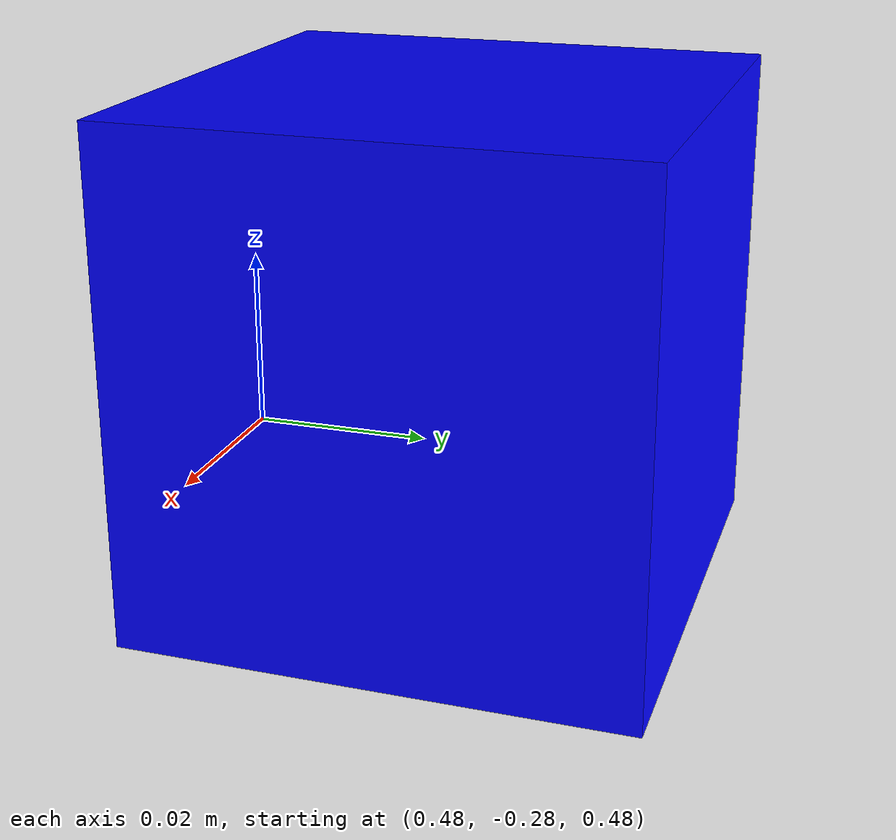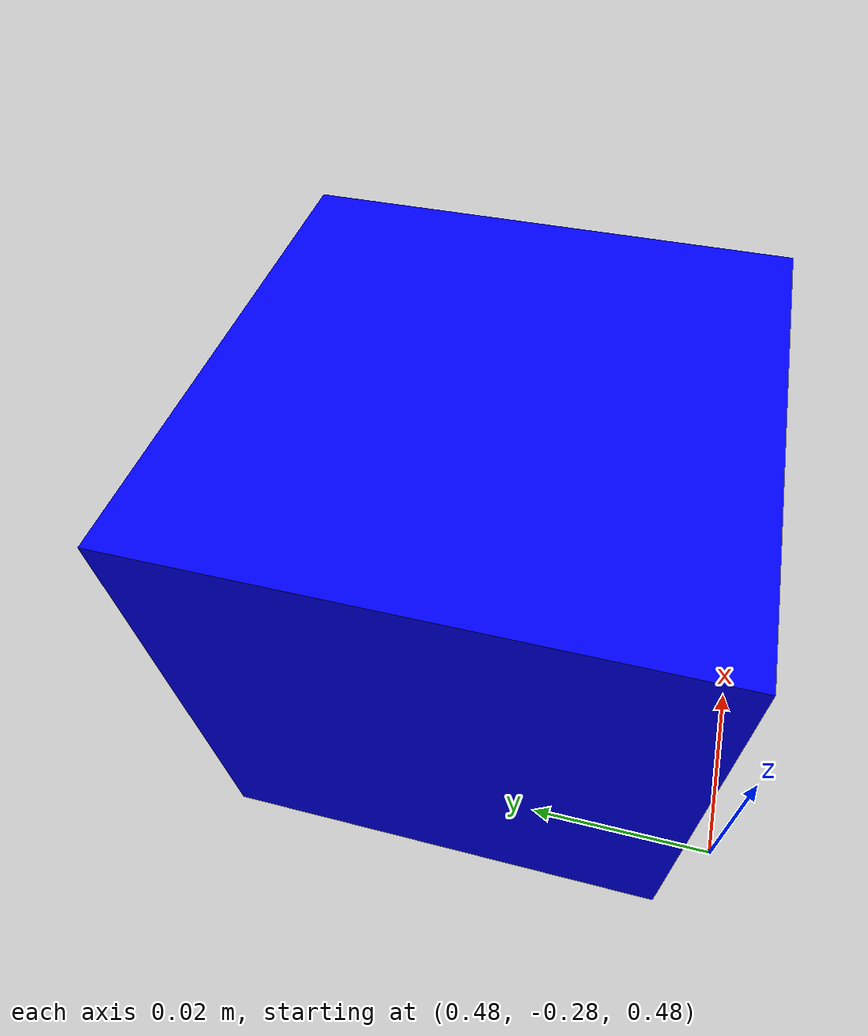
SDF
<?xml version="1.0"?>
<sdf version="1.9">
  <world name="ign_moveit2_follow_target_world">

    <!-- Physics -->
    <plugin filename="ignition-gazebo-physics-system" name="ignition::gazebo::systems::Physics">
      <engine>
        <filename>ignition-physics-dartsim-plugin</filename>
      </engine>
      <dart>
        <collision_detector>bullet</collision_detector>
      </dart>
    </plugin>
    <physics name="physics_config" type="dart">
      <max_step_size>0.005</max_step_size>
      <real_time_factor>1.0</real_time_factor>
    </physics>

    <!-- Scene -->
    <plugin filename="ignition-gazebo-scene-broadcaster-system" name="ignition::gazebo::systems::SceneBroadcaster">
    </plugin>
    <scene>
      <ambient>0.8 0.8 0.8</ambient>
      <grid>false</grid>
    </scene>

    <!-- User Commands (transform control) -->
    <plugin filename="ignition-gazebo-user-commands-system" name="ignition::gazebo::systems::UserCommands">
    </plugin>

    <!-- Sensors -->
    <plugin filename="ignition-gazebo-sensors-system" name="ignition::gazebo::systems::Sensors">
    </plugin>

    <!-- Illumination -->
    <light type="directional" name="sun">
      <cast_shadows>true</cast_shadows>
      <pose>0 0 10 0 0 0</pose>
      <diffuse>0.8 0.8 0.8 1</diffuse>
      <specular>0.2 0.2 0.2 1</specular>
      <attenuation>
        <range>1000</range>
        <constant>0.9</constant>
        <linear>0.01</linear>
        <quadratic>0.001</quadratic>
      </attenuation>
      <direction>-0.3 0.3 -0.9</direction>
    </light>

    <!-- Models -->
    <!-- Ground -->
    <model name="ground_plane">
      <pose>0 0 0 0 0 0</pose>
      <static>true</static>
      <link name="ground_plane_link">
        <collision name="ground_plane_collision">
          <geometry>
            <plane>
              <normal>0 0 1</normal>
            </plane>
          </geometry>
        </collision>
        <visual name="ground_plane_visual">
          <geometry>
            <plane>
              <normal>0 0 1</normal>
              <size>4 4</size>
            </plane>
          </geometry>
          <material>
            <ambient>0.8 0.8 0.8 1</ambient>
            <diffuse>0.8 0.8 0.8 1</diffuse>
            <specular>0.8 0.8 0.8 1</specular>
          </material>
        </visual>
      </link>
    </model>

    <!-- Static target -->
    <model name="target">
      <static>true</static>
      <pose>0.5 -0.25 0.5 3.1415927 0 0</pose>
      <link name="target_link">
        <visual name="target_visual">
          <geometry>
            <box>
              <size>0.05 0.05 0.05</size>
            </box>
          </geometry>
          <material>
            <ambient>0 0 1 1</ambient>
            <diffuse>0 0 1 1</diffuse>
            <specular>0 0 1 1</specular>
          </material>
        </visual>
      </link>
      <!-- Pose publisher plugin, used to determine the target pose to reach -->
      <plugin filename="ignition-gazebo-pose-publisher-system" name="ignition::gazebo::systems::PosePublisher">
        <publish_nested_model_pose>true</publish_nested_model_pose>
        <publish_link_pose>false</publish_link_pose>
        <publish_collision_pose>false</publish_collision_pose>
        <publish_visual_pose>false</publish_visual_pose>
      </plugin>
    </model>

  </world>
</sdf>
